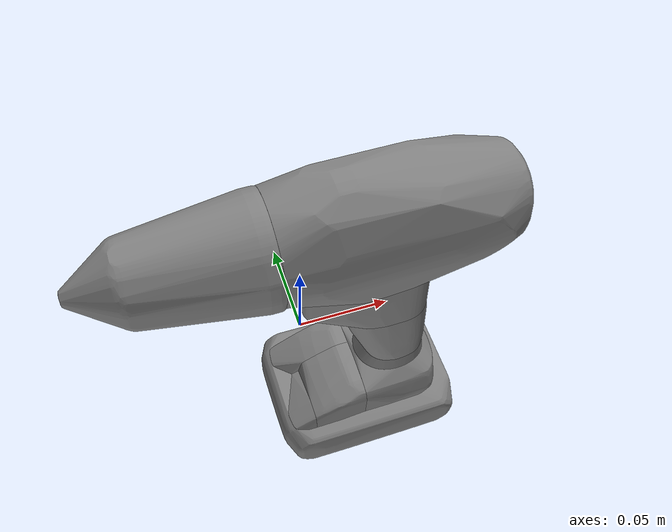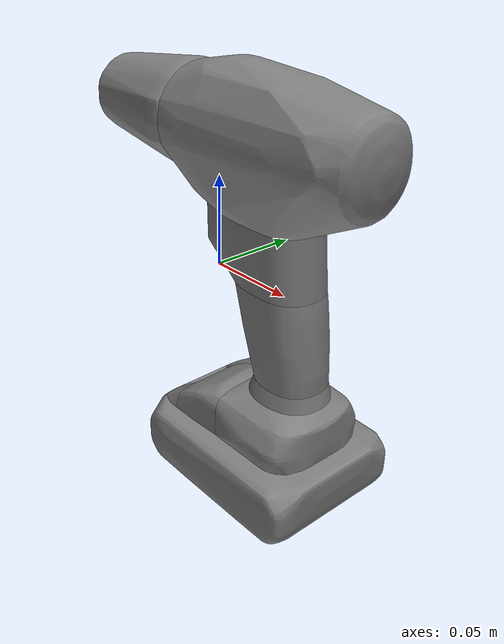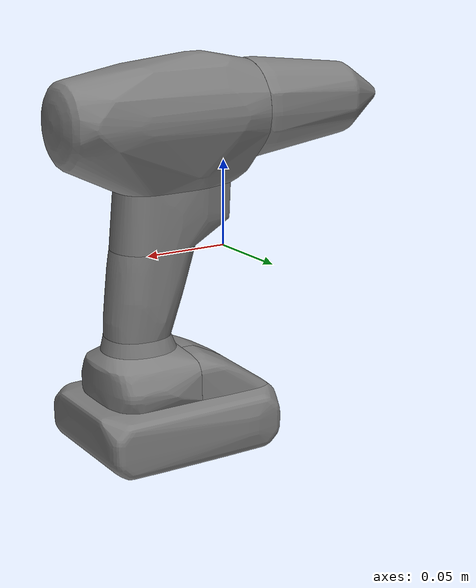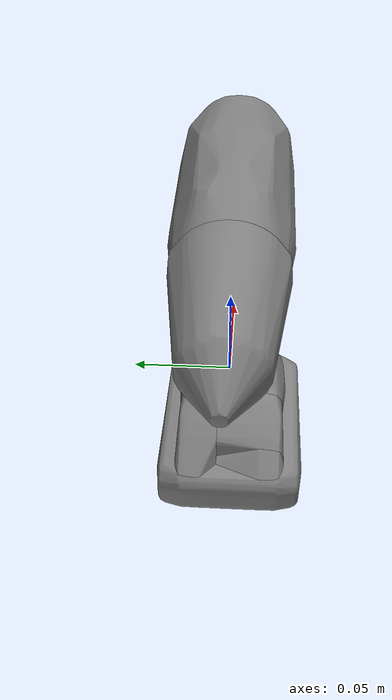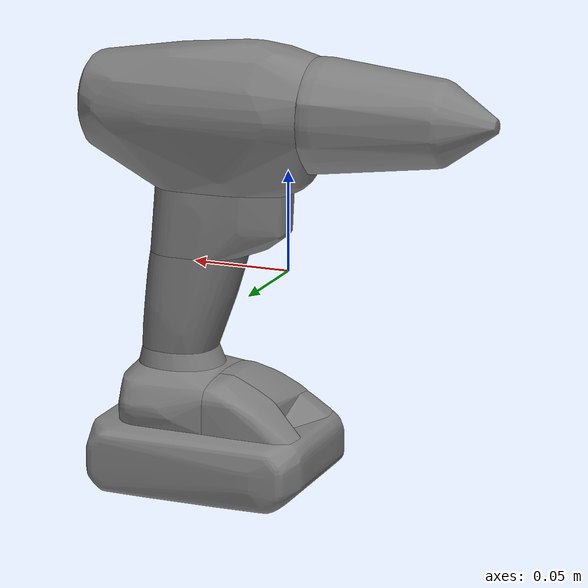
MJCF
<mujoco model="drill_002">
  <asset>
    <mesh
      file="robosuite/models/assets/objects/meshes/e_drill_2.obj"
      name="e_drill_2"
      scale="1.2 1.2 1.2"
    />
    <texture file="robosuite/models/assets/textures/e_drill_2.png" type="2d" name="e_drill_2_tex"/>
    <material
      name="e_drill_2_material"
      reflectance="0.7"
      texrepeat="1 1"
      texture="e_drill_2_tex"
      texuniform="true"
    />

    <mesh file="robosuite/models/assets/objects/meshes/e_drill_2_collision/collision_part_0.obj" name="col_part_0" scale="1.2 1.2 1.2" />
    <mesh file="robosuite/models/assets/objects/meshes/e_drill_2_collision/collision_part_1.obj" name="col_part_1" scale="1.2 1.2 1.2" />
    <mesh file="robosuite/models/assets/objects/meshes/e_drill_2_collision/collision_part_2.obj" name="col_part_2" scale="1.2 1.2 1.2" />
    <mesh file="robosuite/models/assets/objects/meshes/e_drill_2_collision/collision_part_3.obj" name="col_part_3" scale="1.2 1.2 1.2" />
    <mesh file="robosuite/models/assets/objects/meshes/e_drill_2_collision/collision_part_4.obj" name="col_part_4" scale="1.2 1.2 1.2" />
    <mesh file="robosuite/models/assets/objects/meshes/e_drill_2_collision/collision_part_5.obj" name="col_part_5" scale="1.2 1.2 1.2" />
    <mesh file="robosuite/models/assets/objects/meshes/e_drill_2_collision/collision_part_6.obj" name="col_part_6" scale="1.2 1.2 1.2" />
    <mesh file="robosuite/models/assets/objects/meshes/e_drill_2_collision/collision_part_7.obj" name="col_part_7" scale="1.2 1.2 1.2" />
    <mesh file="robosuite/models/assets/objects/meshes/e_drill_2_collision/collision_part_8.obj" name="col_part_8" scale="1.2 1.2 1.2" />
    <mesh file="robosuite/models/assets/objects/meshes/e_drill_2_collision/collision_part_9.obj" name="col_part_9" scale="1.2 1.2 1.2" />
  </asset>

  <worldbody>
    <body>
      <body name="object">

        <geom
          pos="0 0 0"
          mesh="e_drill_2"
          type="mesh"
          material="e_drill_2_material"
          group="1"
          contype="0"
          conaffinity="0"
          mass="0"
        />

        <geom pos="0 0 0" mesh="col_part_0" type="mesh" group="0" condim="4" solimp="0.998 0.998 0.001" solref="0.001 1" density="50" friction="0.95 0.3 0.1" />
        <geom pos="0 0 0" mesh="col_part_1" type="mesh" group="0" condim="4" solimp="0.998 0.998 0.001" solref="0.001 1" density="50" friction="0.95 0.3 0.1" />
        <geom pos="0 0 0" mesh="col_part_2" type="mesh" group="0" condim="4" solimp="0.998 0.998 0.001" solref="0.001 1" density="50" friction="0.95 0.3 0.1" />
        <geom pos="0 0 0" mesh="col_part_3" type="mesh" group="0" condim="4" solimp="0.998 0.998 0.001" solref="0.001 1" density="50" friction="0.95 0.3 0.1" />
        <geom pos="0 0 0" mesh="col_part_4" type="mesh" group="0" condim="4" solimp="0.998 0.998 0.001" solref="0.001 1" density="50" friction="0.95 0.3 0.1" />
        <geom pos="0 0 0" mesh="col_part_5" type="mesh" group="0" condim="4" solimp="0.998 0.998 0.001" solref="0.001 1" density="50" friction="0.95 0.3 0.1" />
        <geom pos="0 0 0" mesh="col_part_6" type="mesh" group="0" condim="4" solimp="0.998 0.998 0.001" solref="0.001 1" density="50" friction="0.95 0.3 0.1" />
        <geom pos="0 0 0" mesh="col_part_7" type="mesh" group="0" condim="4" solimp="0.998 0.998 0.001" solref="0.001 1" density="50" friction="0.95 0.3 0.1" />
        <geom pos="0 0 0" mesh="col_part_8" type="mesh" group="0" condim="4" solimp="0.998 0.998 0.001" solref="0.001 1" density="50" friction="0.95 0.3 0.1" />
        <geom pos="0 0 0" mesh="col_part_9" type="mesh" group="0" condim="4" solimp="0.998 0.998 0.001" solref="0.001 1" density="50" friction="0.95 0.3 0.1" />

      </body>

      <site rgba="0 0 0 0" size="0.006" pos="0 0 -0.1115364" name="bottom_site"/>
      <site rgba="0 0 0 0" size="0.006" pos="0 0 0.1115364" name="top_site"/>
      <site rgba="0 0 0 0" size="0.006" pos="0.10544172 0.10544172 0" name="horizontal_radius_site"/>
    </body>
  </worldbody>
</mujoco>
